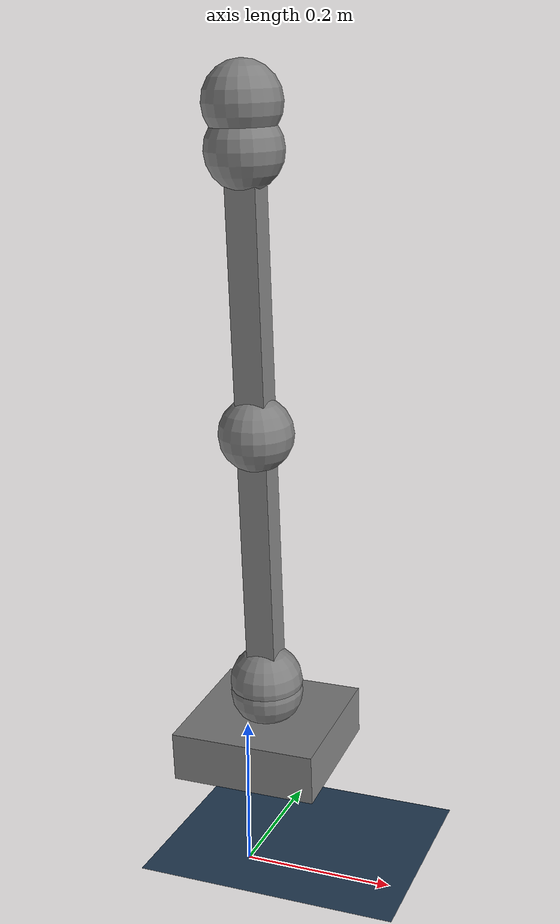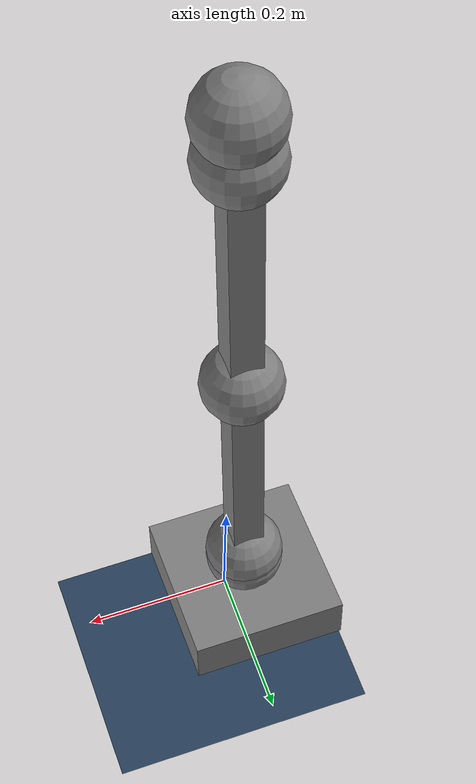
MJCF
<mujoco model="dummy arm scene">

  <include file="setting_option.xml"/>

  <statistic center="0 0 0.2" extent="0.6" />

  <visual>
    <headlight diffuse="0.6 0.6 0.6" ambient="0.3 0.3 0.3" specular="0 0 0" />
    <global azimuth="160" elevation="-20" />
    <rgba haze=".3 .3 .3 1" />
    <quality offsamples="0" />
  </visual>

  <asset>
    <texture type="skybox" builtin="gradient" rgb1="0.6 0.6 0.6" rgb2="0 0 0" width="512"
      height="512" />
    <texture type="2d" name="groundplane" builtin="checker" mark="edge" rgb1="0.2 0.3 0.4"
      rgb2="0.1 0.2 0.3"
      markrgb="0.8 0.8 0.8" width="300" height="300" />
    <material name="groundplane" texture="groundplane" texuniform="true" texrepeat="5 5"
      reflectance="0.2" />
  </asset>

  <worldbody>
    <geom name="floor" size="0 0 0.05" type="plane" material="groundplane" friction="0.5"/>
    <light directional="true" diffuse=".8 .8 .8" specular=".2 .2 .2" pos="0 0 5" dir="0 0 -1" />
    <body pos="0 0 1" euler="0 0 0">
      <include file="parts_mjcf/dummy_6dof_leg.xml"/>
    </body>
  </worldbody>
  <include file="dummy_physics.xml"/>
  <include file="actuator.xml" resolve_relative="root"/>
</mujoco>

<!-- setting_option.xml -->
<mujoco>
    <compiler coordinate="local" angle="degree" meshdir="meshes" strippath="false" />
    <option timestep="0.004" iterations="40" solver="Newton" tolerance="1e-10" gravity="0 0 0"/>

    <default>
        <joint armature="0.6" frictionloss="0.03" />
    </default>

</mujoco>

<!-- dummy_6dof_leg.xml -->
<mujoco>
    <body name="left_hip_y" pos="0 0 0" euler="5 0 0">
        <joint pos="0 0 0" name="l_hip_y" type="hinge" axis="0 0 1" limited="true" range="-180 180" damping="100" />
        <geom type="sphere" size="0.05 0.05 0.1" />
        <body name="left_hip_r" pos="0 0 0" euler="0 0 0">
            <joint pos="0 0 0" name="l_hip_r" type="hinge" axis="1 0 0" limited="true" range="-180 180" damping="100" />
            <geom type="sphere" size="0.05 0.05 0.1" />
            <body name="left_hip_p" pos="0 0 -0.055" euler="0 0 0">
                <joint pos="0 0 0" name="l_hip_p" type="hinge" axis="0 1 0" limited="true" range="-180 180" damping="100" />
                <geom type="sphere" size="0.05 0.05 0.1" />
                <body name="left_leg1" pos="0 0 -0.1775" euler="0 0 0">
                    <geom type="box" size="0.02 0.02 0.1775" />
                    <body name="left_knee_p" pos="0 0 -0.1775" euler="0 0 0">
                        <geom type="sphere" size="0.05" />
                        <joint pos="0 0 0" name="l_knee_p" type="hinge" axis="0 1 0" limited="true" range="-180 180" damping="100" />
                        <body name="left_leg2" pos="0 0 -0.1775" euler="0 0 0">
                            <geom type="box" size="0.02 0.02 0.1775" />
                                <body name="left_ankle_r" pos="0 0 -0.1775" euler="0 0 0">
                                    <joint pos="0 0 0" name="l_ankle_r" type="hinge" axis="1 0 0" limited="true" range="-180 180" damping="100" />
                                    <geom type="sphere" size="0.05 0.05 0.1" />
                                    <body name="left_ankle_p" pos="0 0 -0.015" euler="0 0 0">
                                        <joint pos="0 0 0" name="l_ankle_p" type="hinge" axis="0 1 0" limited="true" range="-180 180" damping="100" />
                                        <geom type="sphere" size="0.05 0.05 0.1" />
                                        <body name="left_leg3" pos="0 0 -0.034" euler="0 0 0">
                                            <geom type="box" size="0.02 0.02 0.034" />
                                            <body name="foot" pos="0 0 -0.034" euler="0 0 0">
                                                <geom type="box" size="0.1 0.1 0.034" contype="0" conaffinity="0" />
                                            </body>
                                        </body>
                                    </body>
                                </body>

                        </body>
                    </body>
                </body>
            </body>
        </body>
    </body>
</mujoco>

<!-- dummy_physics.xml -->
<mujoco>
    <contact>
        <exclude body1="left_hip_p" body2="left_hip_r" />
        <exclude body1="left_hip_p" body2="left_hip_y" />
        <exclude body1="left_hip_r" body2="left_hip_y" />

        <exclude body1="left_leg1" body2="left_hip_r" />
        <exclude body1="left_leg1" body2="left_hip_p" />
        <exclude body1="left_leg1" body2="left_hip_y" />

        <exclude body1="left_leg2" body2="left_ankle_r" />
        <exclude body1="left_leg2" body2="left_ankle_p" />
        <exclude body1="left_leg2" body2="left_leg3" />

        <exclude body1="left_leg3" body2="left_ankle_r" />
        <exclude body1="left_leg3" body2="left_ankle_p" />

    </contact>
</mujoco>

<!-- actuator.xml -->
<mujoco>
    <actuator>
        <position joint="l_hip_p" name="l_hip_p" ctrlrange="-3.14159 3.14159" ctrllimited="true" kp="2700"/>
        <position joint="l_hip_r" name="l_hip_r" ctrlrange="-3.14159 3.14159" ctrllimited="true" kp="2700"/>
        <position joint="l_hip_y" name="l_hip_y" ctrlrange="-3.14159 3.14159" ctrllimited="true" kp="2700"/>
        <position joint="l_knee_p" name="l_knee_p" ctrlrange="-3.14159 3.14159" ctrllimited="true" kp="2700"/>
        <position joint="l_ankle_p" name="l_ankle_p" ctrlrange="-3.14159 3.14159" ctrllimited="true" kp="2700"/>
        <position joint="l_ankle_r" name="l_ankle_r" ctrlrange="-3.14159 3.14159" ctrllimited="true" kp="2700"/>

    </actuator>
</mujoco>
